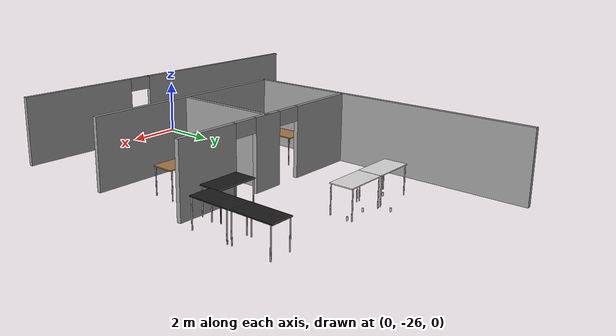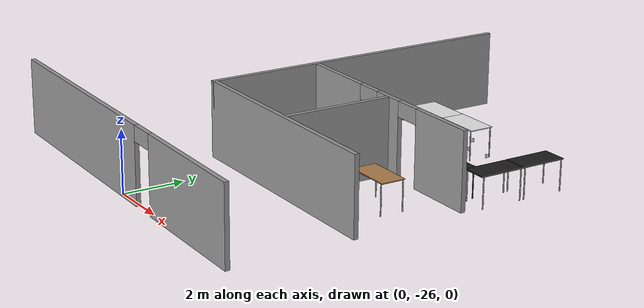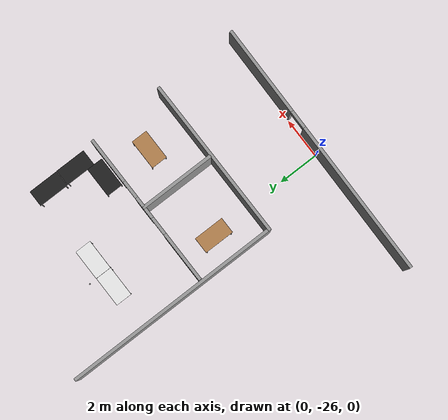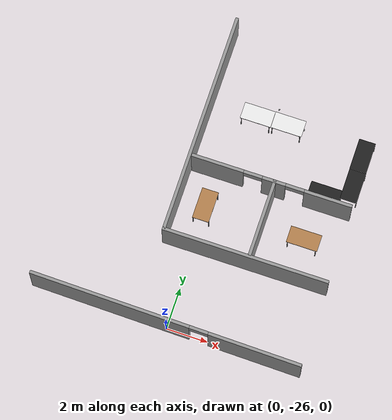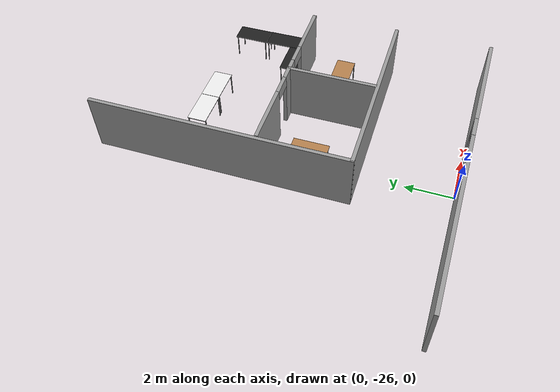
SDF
<sdf version="1.7">
 <model name="ageve">
  <link name="Wall_0">
   <pose>-0.012617 -26.05 0 0 0 -0.016364</pose>
   <visual name="Wall_0_Visual_0">
    <pose>-2.69028 0 1.25 0 -0 0</pose>
    <geometry><box><size>7.70052 0.15 2.5</size></box></geometry>
    <material>
     <script><uri>file://media/materials/scripts/gazebo.material</uri><name>Gazebo/Grey</name></script>
     <ambient>1 1 1 1</ambient>
     <shader type="pixel"/>
    </material>
    <meta><layer>0</layer></meta>
   </visual>
   <visual name="Wall_0_Visual_1">
    <pose>4.30026 0 1.25 0 -0 0</pose>
    <geometry><box><size>4.48056 0.15 2.5</size></box></geometry>
    <material>
     <script><uri>file://media/materials/scripts/gazebo.material</uri><name>Gazebo/Grey</name></script>
     <ambient>1 1 1 1</ambient>
     <shader type="pixel"/>
    </material>
    <meta><layer>0</layer></meta>
   </visual>
   <visual name="Wall_0_Visual_2">
    <pose>1.60998 0 2.25 0 -0 0</pose>
    <geometry><box><size>0.9 0.15 0.5</size></box></geometry>
    <material>
     <script><uri>file://media/materials/scripts/gazebo.material</uri><name>Gazebo/Grey</name></script>
     <ambient>1 1 1 1</ambient>
     <shader type="pixel"/>
    </material>
    <meta><layer>0</layer></meta>
   </visual>
   <collision name="Wall_0_Collision_2">
    <pose>1.60998 0 2.25 0 -0 0</pose>
    <geometry><box><size>0.9 0.15 0.5</size></box></geometry>
    <surface>
     <friction>
      <ode><mu>1</mu><mu2>1</mu2><fdir1>0 0 0</fdir1><slip1>0</slip1><slip2>0</slip2></ode>
      <torsional>
       <coefficient>1</coefficient>
       <patch_radius>0</patch_radius>
       <surface_radius>0</surface_radius>
       <use_patch_radius>1</use_patch_radius>
       <ode><slip>0</slip></ode>
      </torsional>
     </friction>
     <bounce><restitution_coefficient>0</restitution_coefficient><threshold>1e+06</threshold></bounce>
     <contact>
      <collide_without_contact>0</collide_without_contact>
      <collide_without_contact_bitmask>1</collide_without_contact_bitmask>
      <collide_bitmask>1</collide_bitmask>
      <ode>
       <soft_cfm>0</soft_cfm>
       <soft_erp>0.2</soft_erp>
       <kp>1e+13</kp>
       <kd>1</kd>
       <max_vel>0.01</max_vel>
       <min_depth>0</min_depth>
      </ode>
      <bullet>
       <split_impulse>1</split_impulse>
       <split_impulse_penetration_threshold>-0.01</split_impulse_penetration_threshold>
       <soft_cfm>0</soft_cfm>
       <soft_erp>0.2</soft_erp>
       <kp>1e+13</kp>
       <kd>1</kd>
      </bullet>
     </contact>
    </surface>
   </collision>
   <collision name="Wall_0_Collision_0">
    <pose>-2.69028 0 1.25 0 -0 0</pose>
    <geometry><box><size>7.70052 0.15 2.5</size></box></geometry>
    <surface>
     <friction>
      <ode><mu>1</mu><mu2>1</mu2><fdir1>0 0 0</fdir1><slip1>0</slip1><slip2>0</slip2></ode>
      <torsional>
       <coefficient>1</coefficient>
       <patch_radius>0</patch_radius>
       <surface_radius>0</surface_radius>
       <use_patch_radius>1</use_patch_radius>
       <ode><slip>0</slip></ode>
      </torsional>
     </friction>
     <bounce><restitution_coefficient>0</restitution_coefficient><threshold>1e+06</threshold></bounce>
     <contact>
      <collide_without_contact>0</collide_without_contact>
      <collide_without_contact_bitmask>1</collide_without_contact_bitmask>
      <collide_bitmask>1</collide_bitmask>
      <ode>
       <soft_cfm>0</soft_cfm>
       <soft_erp>0.2</soft_erp>
       <kp>1e+13</kp>
       <kd>1</kd>
       <max_vel>0.01</max_vel>
       <min_depth>0</min_depth>
      </ode>
      <bullet>
       <split_impulse>1</split_impulse>
       <split_impulse_penetration_threshold>-0.01</split_impulse_penetration_threshold>
       <soft_cfm>0</soft_cfm>
       <soft_erp>0.2</soft_erp>
       <kp>1e+13</kp>
       <kd>1</kd>
      </bullet>
     </contact>
    </surface>
   </collision>
   <collision name="Wall_0_Collision_1">
    <pose>4.30026 0 1.25 0 -0 0</pose>
    <geometry><box><size>4.48056 0.15 2.5</size></box></geometry>
    <surface>
     <friction>
      <ode><mu>1</mu><mu2>1</mu2><fdir1>0 0 0</fdir1><slip1>0</slip1><slip2>0</slip2></ode>
      <torsional>
       <coefficient>1</coefficient>
       <patch_radius>0</patch_radius>
       <surface_radius>0</surface_radius>
       <use_patch_radius>1</use_patch_radius>
       <ode><slip>0</slip></ode>
      </torsional>
     </friction>
     <bounce><restitution_coefficient>0</restitution_coefficient><threshold>1e+06</threshold></bounce>
     <contact>
      <collide_without_contact>0</collide_without_contact>
      <collide_without_contact_bitmask>1</collide_without_contact_bitmask>
      <collide_bitmask>1</collide_bitmask>
      <ode>
       <soft_cfm>0</soft_cfm>
       <soft_erp>0.2</soft_erp>
       <kp>1e+13</kp>
       <kd>1</kd>
       <max_vel>0.01</max_vel>
       <min_depth>0</min_depth>
      </ode>
      <bullet>
       <split_impulse>1</split_impulse>
       <split_impulse_penetration_threshold>-0.01</split_impulse_penetration_threshold>
       <soft_cfm>0</soft_cfm>
       <soft_erp>0.2</soft_erp>
       <kp>1e+13</kp>
       <kd>1</kd>
      </bullet>
     </contact>
    </surface>
   </collision>
  </link>
  <link name="Wall_11">
   <pose>2.68575 -20.1713 0 0 0 -1.5708</pose>
   <visual name="Wall_11_Visual">
    <pose>0 0 1.25 0 -0 0</pose>
    <geometry><box><size>3.75 0.15 2.5</size></box></geometry>
    <material>
     <script><uri>file://media/materials/scripts/gazebo.material</uri><name>Gazebo/Grey</name></script>
     <ambient>1 1 1 1</ambient>
     <shader type="pixel"/>
    </material>
    <meta><layer>0</layer></meta>
   </visual>
   <collision name="Wall_11_Collision">
    <pose>0 0 1.25 0 -0 0</pose>
    <geometry><box><size>3.75 0.15 2.5</size></box></geometry>
    <surface>
     <friction>
      <ode><mu>1</mu><mu2>1</mu2><fdir1>0 0 0</fdir1><slip1>0</slip1><slip2>0</slip2></ode>
      <torsional>
       <coefficient>1</coefficient>
       <patch_radius>0</patch_radius>
       <surface_radius>0</surface_radius>
       <use_patch_radius>1</use_patch_radius>
       <ode><slip>0</slip></ode>
      </torsional>
     </friction>
     <bounce><restitution_coefficient>0</restitution_coefficient><threshold>1e+06</threshold></bounce>
     <contact>
      <collide_without_contact>0</collide_without_contact>
      <collide_without_contact_bitmask>1</collide_without_contact_bitmask>
      <collide_bitmask>1</collide_bitmask>
      <ode>
       <soft_cfm>0</soft_cfm>
       <soft_erp>0.2</soft_erp>
       <kp>1e+13</kp>
       <kd>1</kd>
       <max_vel>0.01</max_vel>
       <min_depth>0</min_depth>
      </ode>
      <bullet>
       <split_impulse>1</split_impulse>
       <split_impulse_penetration_threshold>-0.01</split_impulse_penetration_threshold>
       <soft_cfm>0</soft_cfm>
       <soft_erp>0.2</soft_erp>
       <kp>1e+13</kp>
       <kd>1</kd>
      </bullet>
     </contact>
    </surface>
   </collision>
  </link>
  <link name="Wall_2">
   <pose>2.54723 -18.366 0 0 -0 0</pose>
   <visual name="Wall_2_Visual_0">
    <pose>-2.61461 0 1.25 0 -0 0</pose>
    <geometry><box><size>2.52079 0.15 2.5</size></box></geometry>
    <material>
     <script><uri>file://media/materials/scripts/gazebo.material</uri><name>Gazebo/Grey</name></script>
     <ambient>1 1 1 1</ambient>
     <shader type="pixel"/>
    </material>
    <meta><layer>0</layer></meta>
   </visual>
   <visual name="Wall_2_Visual_1">
    <pose>0.108959 0 1.25 0 -0 0</pose>
    <geometry><box><size>1.12634 0.15 2.5</size></box></geometry>
    <material>
     <script><uri>file://media/materials/scripts/gazebo.material</uri><name>Gazebo/Grey</name></script>
     <ambient>1 1 1 1</ambient>
     <shader type="pixel"/>
    </material>
    <meta><layer>0</layer></meta>
   </visual>
   <visual name="Wall_2_Visual_3">
    <pose>-0.904212 0 2.25 0 -0 0</pose>
    <geometry><box><size>0.9 0.15 0.5</size></box></geometry>
    <material>
     <script><uri>file://media/materials/scripts/gazebo.material</uri><name>Gazebo/Grey</name></script>
     <ambient>1 1 1 1</ambient>
     <shader type="pixel"/>
    </material>
    <meta><layer>0</layer></meta>
   </visual>
   <visual name="Wall_2_Visual_2">
    <pose>2.72357 0 1.25 0 -0 0</pose>
    <geometry><box><size>2.30287 0.15 2.5</size></box></geometry>
    <material>
     <script><uri>file://media/materials/scripts/gazebo.material</uri><name>Gazebo/Grey</name></script>
     <ambient>1 1 1 1</ambient>
     <shader type="pixel"/>
    </material>
    <meta><layer>0</layer></meta>
   </visual>
   <visual name="Wall_2_Visual_4">
    <pose>1.12213 0 2.25 0 -0 0</pose>
    <geometry><box><size>0.9 0.15 0.5</size></box></geometry>
    <material>
     <script><uri>file://media/materials/scripts/gazebo.material</uri><name>Gazebo/Grey</name></script>
     <ambient>1 1 1 1</ambient>
     <shader type="pixel"/>
    </material>
    <meta><layer>0</layer></meta>
   </visual>
   <collision name="Wall_2_Collision_0">
    <pose>-2.61461 0 1.25 0 -0 0</pose>
    <geometry><box><size>2.52079 0.15 2.5</size></box></geometry>
    <surface>
     <friction>
      <ode><mu>1</mu><mu2>1</mu2><fdir1>0 0 0</fdir1><slip1>0</slip1><slip2>0</slip2></ode>
      <torsional>
       <coefficient>1</coefficient>
       <patch_radius>0</patch_radius>
       <surface_radius>0</surface_radius>
       <use_patch_radius>1</use_patch_radius>
       <ode><slip>0</slip></ode>
      </torsional>
     </friction>
     <bounce><restitution_coefficient>0</restitution_coefficient><threshold>1e+06</threshold></bounce>
     <contact>
      <collide_without_contact>0</collide_without_contact>
      <collide_without_contact_bitmask>1</collide_without_contact_bitmask>
      <collide_bitmask>1</collide_bitmask>
      <ode>
       <soft_cfm>0</soft_cfm>
       <soft_erp>0.2</soft_erp>
       <kp>1e+13</kp>
       <kd>1</kd>
       <max_vel>0.01</max_vel>
       <min_depth>0</min_depth>
      </ode>
      <bullet>
       <split_impulse>1</split_impulse>
       <split_impulse_penetration_threshold>-0.01</split_impulse_penetration_threshold>
       <soft_cfm>0</soft_cfm>
       <soft_erp>0.2</soft_erp>
       <kp>1e+13</kp>
       <kd>1</kd>
      </bullet>
     </contact>
    </surface>
   </collision>
   <collision name="Wall_2_Collision_3">
    <pose>-0.904212 0 2.25 0 -0 0</pose>
    <geometry><box><size>0.9 0.15 0.5</size></box></geometry>
    <surface>
     <friction>
      <ode><mu>1</mu><mu2>1</mu2><fdir1>0 0 0</fdir1><slip1>0</slip1><slip2>0</slip2></ode>
      <torsional>
       <coefficient>1</coefficient>
       <patch_radius>0</patch_radius>
       <surface_radius>0</surface_radius>
       <use_patch_radius>1</use_patch_radius>
       <ode><slip>0</slip></ode>
      </torsional>
     </friction>
     <bounce><restitution_coefficient>0</restitution_coefficient><threshold>1e+06</threshold></bounce>
     <contact>
      <collide_without_contact>0</collide_without_contact>
      <collide_without_contact_bitmask>1</collide_without_contact_bitmask>
      <collide_bitmask>1</collide_bitmask>
      <ode>
       <soft_cfm>0</soft_cfm>
       <soft_erp>0.2</soft_erp>
       <kp>1e+13</kp>
       <kd>1</kd>
       <max_vel>0.01</max_vel>
       <min_depth>0</min_depth>
      </ode>
      <bullet>
       <split_impulse>1</split_impulse>
       <split_impulse_penetration_threshold>-0.01</split_impulse_penetration_threshold>
       <soft_cfm>0</soft_cfm>
       <soft_erp>0.2</soft_erp>
       <kp>1e+13</kp>
       <kd>1</kd>
      </bullet>
     </contact>
    </surface>
   </collision>
   <collision name="Wall_2_Collision_1">
    <pose>0.108959 0 1.25 0 -0 0</pose>
    <geometry><box><size>1.12634 0.15 2.5</size></box></geometry>
    <surface>
     <friction>
      <ode><mu>1</mu><mu2>1</mu2><fdir1>0 0 0</fdir1><slip1>0</slip1><slip2>0</slip2></ode>
      <torsional>
       <coefficient>1</coefficient>
       <patch_radius>0</patch_radius>
       <surface_radius>0</surface_radius>
       <use_patch_radius>1</use_patch_radius>
       <ode><slip>0</slip></ode>
      </torsional>
     </friction>
     <bounce><restitution_coefficient>0</restitution_coefficient><threshold>1e+06</threshold></bounce>
     <contact>
      <collide_without_contact>0</collide_without_contact>
      <collide_without_contact_bitmask>1</collide_without_contact_bitmask>
      <collide_bitmask>1</collide_bitmask>
      <ode>
       <soft_cfm>0</soft_cfm>
       <soft_erp>0.2</soft_erp>
       <kp>1e+13</kp>
       <kd>1</kd>
       <max_vel>0.01</max_vel>
       <min_depth>0</min_depth>
      </ode>
      <bullet>
       <split_impulse>1</split_impulse>
       <split_impulse_penetration_threshold>-0.01</split_impulse_penetration_threshold>
       <soft_cfm>0</soft_cfm>
       <soft_erp>0.2</soft_erp>
       <kp>1e+13</kp>
       <kd>1</kd>
      </bullet>
     </contact>
    </surface>
   </collision>
   <collision name="Wall_2_Collision_2">
    <pose>2.72357 0 1.25 0 -0 0</pose>
    <geometry><box><size>2.30287 0.15 2.5</size></box></geometry>
    <surface>
     <friction>
      <ode><mu>1</mu><mu2>1</mu2><fdir1>0 0 0</fdir1><slip1>0</slip1><slip2>0</slip2></ode>
      <torsional>
       <coefficient>1</coefficient>
       <patch_radius>0</patch_radius>
       <surface_radius>0</surface_radius>
       <use_patch_radius>1</use_patch_radius>
       <ode><slip>0</slip></ode>
      </torsional>
     </friction>
     <bounce><restitution_coefficient>0</restitution_coefficient><threshold>1e+06</threshold></bounce>
     <contact>
      <collide_without_contact>0</collide_without_contact>
      <collide_without_contact_bitmask>1</collide_without_contact_bitmask>
      <collide_bitmask>1</collide_bitmask>
      <ode>
       <soft_cfm>0</soft_cfm>
       <soft_erp>0.2</soft_erp>
       <kp>1e+13</kp>
       <kd>1</kd>
       <max_vel>0.01</max_vel>
       <min_depth>0</min_depth>
      </ode>
      <bullet>
       <split_impulse>1</split_impulse>
       <split_impulse_penetration_threshold>-0.01</split_impulse_penetration_threshold>
       <soft_cfm>0</soft_cfm>
       <soft_erp>0.2</soft_erp>
       <kp>1e+13</kp>
       <kd>1</kd>
      </bullet>
     </contact>
    </surface>
   </collision>
   <collision name="Wall_2_Collision_4">
    <pose>1.12213 0 2.25 0 -0 0</pose>
    <geometry><box><size>0.9 0.15 0.5</size></box></geometry>
    <surface>
     <friction>
      <ode><mu>1</mu><mu2>1</mu2><fdir1>0 0 0</fdir1><slip1>0</slip1><slip2>0</slip2></ode>
      <torsional>
       <coefficient>1</coefficient>
       <patch_radius>0</patch_radius>
       <surface_radius>0</surface_radius>
       <use_patch_radius>1</use_patch_radius>
       <ode><slip>0</slip></ode>
      </torsional>
     </friction>
     <bounce><restitution_coefficient>0</restitution_coefficient><threshold>1e+06</threshold></bounce>
     <contact>
      <collide_without_contact>0</collide_without_contact>
      <collide_without_contact_bitmask>1</collide_without_contact_bitmask>
      <collide_bitmask>1</collide_bitmask>
      <ode>
       <soft_cfm>0</soft_cfm>
       <soft_erp>0.2</soft_erp>
       <kp>1e+13</kp>
       <kd>1</kd>
       <max_vel>0.01</max_vel>
       <min_depth>0</min_depth>
      </ode>
      <bullet>
       <split_impulse>1</split_impulse>
       <split_impulse_penetration_threshold>-0.01</split_impulse_penetration_threshold>
       <soft_cfm>0</soft_cfm>
       <soft_erp>0.2</soft_erp>
       <kp>1e+13</kp>
       <kd>1</kd>
      </bullet>
     </contact>
    </surface>
   </collision>
  </link>
  <link name="Wall_8">
   <pose>-1.42451 -16.7935 0 0 0 -1.5708</pose>
   <visual name="Wall_8_Visual">
    <pose>0 0 1.25 0 -0 0</pose>
    <geometry><box><size>10.75 0.15 2.5</size></box></geometry>
    <material>
     <script><uri>file://media/materials/scripts/gazebo.material</uri><name>Gazebo/Grey</name></script>
     <ambient>1 1 1 1</ambient>
     <shader type="pixel"/>
    </material>
    <meta><layer>0</layer></meta>
   </visual>
   <collision name="Wall_8_Collision">
    <pose>0 0 1.25 0 -0 0</pose>
    <geometry><box><size>10.75 0.15 2.5</size></box></geometry>
    <surface>
     <friction>
      <ode><mu>1</mu><mu2>1</mu2><fdir1>0 0 0</fdir1><slip1>0</slip1><slip2>0</slip2></ode>
      <torsional>
       <coefficient>1</coefficient>
       <patch_radius>0</patch_radius>
       <surface_radius>0</surface_radius>
       <use_patch_radius>1</use_patch_radius>
       <ode><slip>0</slip></ode>
      </torsional>
     </friction>
     <bounce><restitution_coefficient>0</restitution_coefficient><threshold>1e+06</threshold></bounce>
     <contact>
      <collide_without_contact>0</collide_without_contact>
      <collide_without_contact_bitmask>1</collide_without_contact_bitmask>
      <collide_bitmask>1</collide_bitmask>
      <ode>
       <soft_cfm>0</soft_cfm>
       <soft_erp>0.2</soft_erp>
       <kp>1e+13</kp>
       <kd>1</kd>
       <max_vel>0.01</max_vel>
       <min_depth>0</min_depth>
      </ode>
      <bullet>
       <split_impulse>1</split_impulse>
       <split_impulse_penetration_threshold>-0.01</split_impulse_penetration_threshold>
       <soft_cfm>0</soft_cfm>
       <soft_erp>0.2</soft_erp>
       <kp>1e+13</kp>
       <kd>1</kd>
      </bullet>
     </contact>
    </surface>
   </collision>
  </link>
  <link name="Wall_9">
   <pose>2.50049 -22.0935 0 0 -0 0</pose>
   <visual name="Wall_9_Visual">
    <pose>0 0 1.25 0 -0 0</pose>
    <geometry><box><size>8 0.15 2.5</size></box></geometry>
    <material>
     <script><uri>file://media/materials/scripts/gazebo.material</uri><name>Gazebo/Grey</name></script>
     <ambient>1 1 1 1</ambient>
     <shader type="pixel"/>
    </material>
    <meta><layer>0</layer></meta>
   </visual>
   <collision name="Wall_9_Collision">
    <pose>0 0 1.25 0 -0 0</pose>
    <geometry><box><size>8 0.15 2.5</size></box></geometry>
    <surface>
     <friction>
      <ode><mu>1</mu><mu2>1</mu2><fdir1>0 0 0</fdir1><slip1>0</slip1><slip2>0</slip2></ode>
      <torsional>
       <coefficient>1</coefficient>
       <patch_radius>0</patch_radius>
       <surface_radius>0</surface_radius>
       <use_patch_radius>1</use_patch_radius>
       <ode><slip>0</slip></ode>
      </torsional>
     </friction>
     <bounce><restitution_coefficient>0</restitution_coefficient><threshold>1e+06</threshold></bounce>
     <contact>
      <collide_without_contact>0</collide_without_contact>
      <collide_without_contact_bitmask>1</collide_without_contact_bitmask>
      <collide_bitmask>1</collide_bitmask>
      <ode>
       <soft_cfm>0</soft_cfm>
       <soft_erp>0.2</soft_erp>
       <kp>1e+13</kp>
       <kd>1</kd>
       <max_vel>0.01</max_vel>
       <min_depth>0</min_depth>
      </ode>
      <bullet>
       <split_impulse>1</split_impulse>
       <split_impulse_penetration_threshold>-0.01</split_impulse_penetration_threshold>
       <soft_cfm>0</soft_cfm>
       <soft_erp>0.2</soft_erp>
       <kp>1e+13</kp>
       <kd>1</kd>
      </bullet>
     </contact>
    </surface>
   </collision>
  </link>
  <model name="coke_can_0">
   <link name="link">
    <inertial>
     <pose>0 0 0.06 0 -0 0</pose>
     <mass>0.39</mass>
     <inertia>
      <ixx>0.00055575</ixx>
      <ixy>0</ixy>
      <ixz>0</ixz>
      <iyy>0.00055575</iyy>
      <iyz>0</iyz>
      <izz>0.0001755</izz>
     </inertia>
    </inertial>
    <collision name="collision">
     <pose>0.003937 0.004724 -0.18 0 -0 0</pose>
     <geometry><mesh><uri>model://coke_can/meshes/coke_can.dae</uri></mesh></geometry>
     <surface>
      <friction><ode><mu>1</mu><mu2>1</mu2></ode></friction>
      <contact><ode><kp>1e+07</kp><kd>1</kd><min_depth>0.001</min_depth><max_vel>0.1</max_vel></ode></contact>
     </surface>
    </collision>
    <visual name="visual">
     <pose>0.003937 0.004724 -0.18 0 -0 0</pose>
     <geometry><mesh><uri>model://coke_can/meshes/coke_can.dae</uri></mesh></geometry>
    </visual>
   </link>
   <pose>1.65987 -14.3374 0 0 -0 0</pose>
  </model>
  <model name="coke_can_1">
   <link name="link">
    <inertial>
     <pose>0 0 0.06 0 -0 0</pose>
     <mass>0.39</mass>
     <inertia>
      <ixx>0.00055575</ixx>
      <ixy>0</ixy>
      <ixz>0</ixz>
      <iyy>0.00055575</iyy>
      <iyz>0</iyz>
      <izz>0.0001755</izz>
     </inertia>
    </inertial>
    <collision name="collision">
     <pose>0.003937 0.004724 -0.18 0 -0 0</pose>
     <geometry><mesh><uri>model://coke_can/meshes/coke_can.dae</uri></mesh></geometry>
     <surface>
      <friction><ode><mu>1</mu><mu2>1</mu2></ode></friction>
      <contact><ode><kp>1e+07</kp><kd>1</kd><min_depth>0.001</min_depth><max_vel>0.1</max_vel></ode></contact>
     </surface>
    </collision>
    <visual name="visual">
     <pose>0.003937 0.004724 -0.18 0 -0 0</pose>
     <geometry><mesh><uri>model://coke_can/meshes/coke_can.dae</uri></mesh></geometry>
    </visual>
   </link>
   <pose>3.07219 -14.9108 0 0 -0 0</pose>
  </model>
  <model name="coke_can_2">
   <link name="link">
    <inertial>
     <pose>0 0 0.06 0 -0 0</pose>
     <mass>0.39</mass>
     <inertia>
      <ixx>0.00055575</ixx>
      <ixy>0</ixy>
      <ixz>0</ixz>
      <iyy>0.00055575</iyy>
      <iyz>0</iyz>
      <izz>0.0001755</izz>
     </inertia>
    </inertial>
    <collision name="collision">
     <pose>0.003937 0.004724 -0.18 0 -0 0</pose>
     <geometry><mesh><uri>model://coke_can/meshes/coke_can.dae</uri></mesh></geometry>
     <surface>
      <friction><ode><mu>1</mu><mu2>1</mu2></ode></friction>
      <contact><ode><kp>1e+07</kp><kd>1</kd><min_depth>0.001</min_depth><max_vel>0.1</max_vel></ode></contact>
     </surface>
    </collision>
    <visual name="visual">
     <pose>0.003937 0.004724 -0.18 0 -0 0</pose>
     <geometry><mesh><uri>model://coke_can/meshes/coke_can.dae</uri></mesh></geometry>
    </visual>
   </link>
   <pose>2.22945 -14.9439 0 0 -0 0</pose>
  </model>
  <model name="coke_can_3">
   <link name="link">
    <inertial>
     <pose>0 0 0.06 0 -0 0</pose>
     <mass>0.39</mass>
     <inertia>
      <ixx>0.00055575</ixx>
      <ixy>0</ixy>
      <ixz>0</ixz>
      <iyy>0.00055575</iyy>
      <iyz>0</iyz>
      <izz>0.0001755</izz>
     </inertia>
    </inertial>
    <collision name="collision">
     <pose>0.003937 0.004724 -0.18 0 -0 0</pose>
     <geometry><mesh><uri>model://coke_can/meshes/coke_can.dae</uri></mesh></geometry>
     <surface>
      <friction><ode><mu>1</mu><mu2>1</mu2></ode></friction>
      <contact><ode><kp>1e+07</kp><kd>1</kd><min_depth>0.001</min_depth><max_vel>0.1</max_vel></ode></contact>
     </surface>
    </collision>
    <visual name="visual">
     <pose>0.003937 0.004724 -0.18 0 -0 0</pose>
     <geometry><mesh><uri>model://coke_can/meshes/coke_can.dae</uri></mesh></geometry>
    </visual>
   </link>
   <pose>0.713309 -15.2153 0 0 -0 0</pose>
  </model>
  <model name="table_2">
   <static>1</static>
   <link name="link">
    <collision name="surface">
     <pose>0 0 1 0 -0 0</pose>
     <geometry><box><size>1.5 0.8 0.03</size></box></geometry>
     <surface><friction><ode><mu>0.6</mu><mu2>0.6</mu2></ode></friction></surface>
    </collision>
    <visual name="visual1">
     <pose>0 0 1 0 -0 0</pose>
     <geometry><box><size>1.5 0.8 0.03</size></box></geometry>
     <material>
      <script><uri>file://media/materials/scripts/gazebo.material</uri><name>Gazebo/White</name></script>
     </material>
    </visual>
    <collision name="front_left_leg">
     <pose>0.68 0.38 0.5 0 -0 0</pose>
     <geometry><cylinder><radius>0.02</radius><length>1</length></cylinder></geometry>
    </collision>
    <visual name="front_left_leg">
     <pose>0.68 0.38 0.5 0 -0 0</pose>
     <geometry><cylinder><radius>0.02</radius><length>1</length></cylinder></geometry>
     <material>
      <script><uri>file://media/materials/scripts/gazebo.material</uri><name>Gazebo/Grey</name></script>
     </material>
    </visual>
    <collision name="front_right_leg">
     <pose>0.68 -0.38 0.5 0 -0 0</pose>
     <geometry><cylinder><radius>0.02</radius><length>1</length></cylinder></geometry>
    </collision>
    <visual name="front_right_leg">
     <pose>0.68 -0.38 0.5 0 -0 0</pose>
     <geometry><cylinder><radius>0.02</radius><length>1</length></cylinder></geometry>
     <material>
      <script><uri>file://media/materials/scripts/gazebo.material</uri><name>Gazebo/Grey</name></script>
     </material>
    </visual>
    <collision name="back_right_leg">
     <pose>-0.68 -0.38 0.5 0 -0 0</pose>
     <geometry><cylinder><radius>0.02</radius><length>1</length></cylinder></geometry>
    </collision>
    <visual name="back_right_leg">
     <pose>-0.68 -0.38 0.5 0 -0 0</pose>
     <geometry><cylinder><radius>0.02</radius><length>1</length></cylinder></geometry>
     <material>
      <script><uri>file://media/materials/scripts/gazebo.material</uri><name>Gazebo/Grey</name></script>
     </material>
    </visual>
    <collision name="back_left_leg">
     <pose>-0.68 0.38 0.5 0 -0 0</pose>
     <geometry><cylinder><radius>0.02</radius><length>1</length></cylinder></geometry>
    </collision>
    <visual name="back_left_leg">
     <pose>-0.68 0.38 0.5 0 -0 0</pose>
     <geometry><cylinder><radius>0.02</radius><length>1</length></cylinder></geometry>
     <material>
      <script><uri>file://media/materials/scripts/gazebo.material</uri><name>Gazebo/Grey</name></script>
     </material>
    </visual>
   </link>
   <pose>2.35589 -15.1519 0 0 -0 0</pose>
  </model>
  <model name="table_3">
   <static>1</static>
   <link name="link">
    <collision name="surface">
     <pose>0 0 1 0 -0 0</pose>
     <geometry><box><size>1.5 0.8 0.03</size></box></geometry>
     <surface><friction><ode><mu>0.6</mu><mu2>0.6</mu2></ode></friction></surface>
    </collision>
    <visual name="visual1">
     <pose>0 0 1 0 -0 0</pose>
     <geometry><box><size>1.5 0.8 0.03</size></box></geometry>
     <material>
      <script><uri>file://media/materials/scripts/gazebo.material</uri><name>Gazebo/White</name></script>
     </material>
    </visual>
    <collision name="front_left_leg">
     <pose>0.68 0.38 0.5 0 -0 0</pose>
     <geometry><cylinder><radius>0.02</radius><length>1</length></cylinder></geometry>
    </collision>
    <visual name="front_left_leg">
     <pose>0.68 0.38 0.5 0 -0 0</pose>
     <geometry><cylinder><radius>0.02</radius><length>1</length></cylinder></geometry>
     <material>
      <script><uri>file://media/materials/scripts/gazebo.material</uri><name>Gazebo/Grey</name></script>
     </material>
    </visual>
    <collision name="front_right_leg">
     <pose>0.68 -0.38 0.5 0 -0 0</pose>
     <geometry><cylinder><radius>0.02</radius><length>1</length></cylinder></geometry>
    </collision>
    <visual name="front_right_leg">
     <pose>0.68 -0.38 0.5 0 -0 0</pose>
     <geometry><cylinder><radius>0.02</radius><length>1</length></cylinder></geometry>
     <material>
      <script><uri>file://media/materials/scripts/gazebo.material</uri><name>Gazebo/Grey</name></script>
     </material>
    </visual>
    <collision name="back_right_leg">
     <pose>-0.68 -0.38 0.5 0 -0 0</pose>
     <geometry><cylinder><radius>0.02</radius><length>1</length></cylinder></geometry>
    </collision>
    <visual name="back_right_leg">
     <pose>-0.68 -0.38 0.5 0 -0 0</pose>
     <geometry><cylinder><radius>0.02</radius><length>1</length></cylinder></geometry>
     <material>
      <script><uri>file://media/materials/scripts/gazebo.material</uri><name>Gazebo/Grey</name></script>
     </material>
    </visual>
    <collision name="back_left_leg">
     <pose>-0.68 0.38 0.5 0 -0 0</pose>
     <geometry><cylinder><radius>0.02</radius><length>1</length></cylinder></geometry>
    </collision>
    <visual name="back_left_leg">
     <pose>-0.68 0.38 0.5 0 -0 0</pose>
     <geometry><cylinder><radius>0.02</radius><length>1</length></cylinder></geometry>
     <material>
      <script><uri>file://media/materials/scripts/gazebo.material</uri><name>Gazebo/Grey</name></script>
     </material>
    </visual>
   </link>
   <pose>0.849179 -15.1597 0 0 -0 0</pose>
  </model>
  <model name="table_4">
   <static>1</static>
   <link name="link">
    <collision name="surface">
     <pose>0 0 1 0 -0 0</pose>
     <geometry><box><size>1.5 0.8 0.03</size></box></geometry>
     <surface><friction><ode><mu>0.6</mu><mu2>0.6</mu2></ode></friction></surface>
    </collision>
    <visual name="visual1">
     <pose>0 0 1 0 -0 0</pose>
     <geometry><box><size>1.5 0.8 0.03</size></box></geometry>
     <material>
      <script><uri>file://media/materials/scripts/gazebo.material</uri><name>Gazebo/Wood</name></script>
     </material>
    </visual>
    <collision name="front_left_leg">
     <pose>0.68 0.38 0.5 0 -0 0</pose>
     <geometry><cylinder><radius>0.02</radius><length>1</length></cylinder></geometry>
    </collision>
    <visual name="front_left_leg">
     <pose>0.68 0.38 0.5 0 -0 0</pose>
     <geometry><cylinder><radius>0.02</radius><length>1</length></cylinder></geometry>
     <material>
      <script><uri>file://media/materials/scripts/gazebo.material</uri><name>Gazebo/Grey</name></script>
     </material>
    </visual>
    <collision name="front_right_leg">
     <pose>0.68 -0.38 0.5 0 -0 0</pose>
     <geometry><cylinder><radius>0.02</radius><length>1</length></cylinder></geometry>
    </collision>
    <visual name="front_right_leg">
     <pose>0.68 -0.38 0.5 0 -0 0</pose>
     <geometry><cylinder><radius>0.02</radius><length>1</length></cylinder></geometry>
     <material>
      <script><uri>file://media/materials/scripts/gazebo.material</uri><name>Gazebo/Grey</name></script>
     </material>
    </visual>
    <collision name="back_right_leg">
     <pose>-0.68 -0.38 0.5 0 -0 0</pose>
     <geometry><cylinder><radius>0.02</radius><length>1</length></cylinder></geometry>
    </collision>
    <visual name="back_right_leg">
     <pose>-0.68 -0.38 0.5 0 -0 0</pose>
     <geometry><cylinder><radius>0.02</radius><length>1</length></cylinder></geometry>
     <material>
      <script><uri>file://media/materials/scripts/gazebo.material</uri><name>Gazebo/Grey</name></script>
     </material>
    </visual>
    <collision name="back_left_leg">
     <pose>-0.68 0.38 0.5 0 -0 0</pose>
     <geometry><cylinder><radius>0.02</radius><length>1</length></cylinder></geometry>
    </collision>
    <visual name="back_left_leg">
     <pose>-0.68 0.38 0.5 0 -0 0</pose>
     <geometry><cylinder><radius>0.02</radius><length>1</length></cylinder></geometry>
     <material>
      <script><uri>file://media/materials/scripts/gazebo.material</uri><name>Gazebo/Grey</name></script>
     </material>
    </visual>
   </link>
   <pose>4.74405 -20.153 0 0 -0 0</pose>
  </model>
  <model name="table_5">
   <static>1</static>
   <link name="link">
    <collision name="surface">
     <pose>0 0 1 0 -0 0</pose>
     <geometry><box><size>1.5 0.8 0.03</size></box></geometry>
     <surface><friction><ode><mu>0.6</mu><mu2>0.6</mu2></ode></friction></surface>
    </collision>
    <visual name="visual1">
     <pose>0 0 1 0 -0 0</pose>
     <geometry><box><size>1.5 0.8 0.03</size></box></geometry>
     <material>
      <script><uri>file://media/materials/scripts/gazebo.material</uri><name>Gazebo/Wood</name></script>
     </material>
    </visual>
    <collision name="front_left_leg">
     <pose>0.68 0.38 0.5 0 -0 0</pose>
     <geometry><cylinder><radius>0.02</radius><length>1</length></cylinder></geometry>
    </collision>
    <visual name="front_left_leg">
     <pose>0.68 0.38 0.5 0 -0 0</pose>
     <geometry><cylinder><radius>0.02</radius><length>1</length></cylinder></geometry>
     <material>
      <script><uri>file://media/materials/scripts/gazebo.material</uri><name>Gazebo/Grey</name></script>
     </material>
    </visual>
    <collision name="front_right_leg">
     <pose>0.68 -0.38 0.5 0 -0 0</pose>
     <geometry><cylinder><radius>0.02</radius><length>1</length></cylinder></geometry>
    </collision>
    <visual name="front_right_leg">
     <pose>0.68 -0.38 0.5 0 -0 0</pose>
     <geometry><cylinder><radius>0.02</radius><length>1</length></cylinder></geometry>
     <material>
      <script><uri>file://media/materials/scripts/gazebo.material</uri><name>Gazebo/Grey</name></script>
     </material>
    </visual>
    <collision name="back_right_leg">
     <pose>-0.68 -0.38 0.5 0 -0 0</pose>
     <geometry><cylinder><radius>0.02</radius><length>1</length></cylinder></geometry>
    </collision>
    <visual name="back_right_leg">
     <pose>-0.68 -0.38 0.5 0 -0 0</pose>
     <geometry><cylinder><radius>0.02</radius><length>1</length></cylinder></geometry>
     <material>
      <script><uri>file://media/materials/scripts/gazebo.material</uri><name>Gazebo/Grey</name></script>
     </material>
    </visual>
    <collision name="back_left_leg">
     <pose>-0.68 0.38 0.5 0 -0 0</pose>
     <geometry><cylinder><radius>0.02</radius><length>1</length></cylinder></geometry>
    </collision>
    <visual name="back_left_leg">
     <pose>-0.68 0.38 0.5 0 -0 0</pose>
     <geometry><cylinder><radius>0.02</radius><length>1</length></cylinder></geometry>
     <material>
      <script><uri>file://media/materials/scripts/gazebo.material</uri><name>Gazebo/Grey</name></script>
     </material>
    </visual>
   </link>
   <pose>-0.08807 -20.0746 0 0 -0 1.57079</pose>
  </model>
  <model name="table_5_clone_0">
   <static>1</static>
   <link name="link">
    <collision name="surface">
     <pose>0 0 1 0 -0 0</pose>
     <geometry><box><size>1.5 0.8 0.03</size></box></geometry>
     <surface><friction><ode><mu>0.6</mu><mu2>0.6</mu2></ode></friction></surface>
    </collision>
    <visual name="visual1">
     <pose>0 0 1 0 -0 0</pose>
     <geometry><box><size>1.5 0.8 0.03</size></box></geometry>
     <material>
      <script><uri>file://media/materials/scripts/gazebo.material</uri><name>Gazebo/FlatBlack</name></script>
     </material>
    </visual>
    <collision name="front_left_leg">
     <pose>0.68 0.38 0.5 0 -0 0</pose>
     <geometry><cylinder><radius>0.02</radius><length>1</length></cylinder></geometry>
    </collision>
    <visual name="front_left_leg">
     <pose>0.68 0.38 0.5 0 -0 0</pose>
     <geometry><cylinder><radius>0.02</radius><length>1</length></cylinder></geometry>
     <material>
      <script><uri>file://media/materials/scripts/gazebo.material</uri><name>Gazebo/Grey</name></script>
     </material>
    </visual>
    <collision name="front_right_leg">
     <pose>0.68 -0.38 0.5 0 -0 0</pose>
     <geometry><cylinder><radius>0.02</radius><length>1</length></cylinder></geometry>
    </collision>
    <visual name="front_right_leg">
     <pose>0.68 -0.38 0.5 0 -0 0</pose>
     <geometry><cylinder><radius>0.02</radius><length>1</length></cylinder></geometry>
     <material>
      <script><uri>file://media/materials/scripts/gazebo.material</uri><name>Gazebo/Grey</name></script>
     </material>
    </visual>
    <collision name="back_right_leg">
     <pose>-0.68 -0.38 0.5 0 -0 0</pose>
     <geometry><cylinder><radius>0.02</radius><length>1</length></cylinder></geometry>
    </collision>
    <visual name="back_right_leg">
     <pose>-0.68 -0.38 0.5 0 -0 0</pose>
     <geometry><cylinder><radius>0.02</radius><length>1</length></cylinder></geometry>
     <material>
      <script><uri>file://media/materials/scripts/gazebo.material</uri><name>Gazebo/Grey</name></script>
     </material>
    </visual>
    <collision name="back_left_leg">
     <pose>-0.68 0.38 0.5 0 -0 0</pose>
     <geometry><cylinder><radius>0.02</radius><length>1</length></cylinder></geometry>
    </collision>
    <visual name="back_left_leg">
     <pose>-0.68 0.38 0.5 0 -0 0</pose>
     <geometry><cylinder><radius>0.02</radius><length>1</length></cylinder></geometry>
     <material>
      <script><uri>file://media/materials/scripts/gazebo.material</uri><name>Gazebo/Grey</name></script>
     </material>
    </visual>
   </link>
   <pose>6.11023 -15.5185 0 0 -0 1.57079</pose>
  </model>
  <model name="table_5_clone_1">
   <static>1</static>
   <link name="link">
    <collision name="surface">
     <pose>0 0 1 0 -0 0</pose>
     <geometry><box><size>1.5 0.8 0.03</size></box></geometry>
     <surface><friction><ode><mu>0.6</mu><mu2>0.6</mu2></ode></friction></surface>
    </collision>
    <visual name="visual1">
     <pose>0 0 1 0 -0 0</pose>
     <geometry><box><size>1.5 0.8 0.03</size></box></geometry>
     <material>
      <script><uri>file://media/materials/scripts/gazebo.material</uri><name>Gazebo/FlatBlack</name></script>
     </material>
    </visual>
    <collision name="front_left_leg">
     <pose>0.68 0.38 0.5 0 -0 0</pose>
     <geometry><cylinder><radius>0.02</radius><length>1</length></cylinder></geometry>
    </collision>
    <visual name="front_left_leg">
     <pose>0.68 0.38 0.5 0 -0 0</pose>
     <geometry><cylinder><radius>0.02</radius><length>1</length></cylinder></geometry>
     <material>
      <script><uri>file://media/materials/scripts/gazebo.material</uri><name>Gazebo/Grey</name></script>
     </material>
    </visual>
    <collision name="front_right_leg">
     <pose>0.68 -0.38 0.5 0 -0 0</pose>
     <geometry><cylinder><radius>0.02</radius><length>1</length></cylinder></geometry>
    </collision>
    <visual name="front_right_leg">
     <pose>0.68 -0.38 0.5 0 -0 0</pose>
     <geometry><cylinder><radius>0.02</radius><length>1</length></cylinder></geometry>
     <material>
      <script><uri>file://media/materials/scripts/gazebo.material</uri><name>Gazebo/Grey</name></script>
     </material>
    </visual>
    <collision name="back_right_leg">
     <pose>-0.68 -0.38 0.5 0 -0 0</pose>
     <geometry><cylinder><radius>0.02</radius><length>1</length></cylinder></geometry>
    </collision>
    <visual name="back_right_leg">
     <pose>-0.68 -0.38 0.5 0 -0 0</pose>
     <geometry><cylinder><radius>0.02</radius><length>1</length></cylinder></geometry>
     <material>
      <script><uri>file://media/materials/scripts/gazebo.material</uri><name>Gazebo/Grey</name></script>
     </material>
    </visual>
    <collision name="back_left_leg">
     <pose>-0.68 0.38 0.5 0 -0 0</pose>
     <geometry><cylinder><radius>0.02</radius><length>1</length></cylinder></geometry>
    </collision>
    <visual name="back_left_leg">
     <pose>-0.68 0.38 0.5 0 -0 0</pose>
     <geometry><cylinder><radius>0.02</radius><length>1</length></cylinder></geometry>
     <material>
      <script><uri>file://media/materials/scripts/gazebo.material</uri><name>Gazebo/Grey</name></script>
     </material>
    </visual>
   </link>
   <pose>6.12164 -17.0349 0 0 -0 1.57079</pose>
  </model>
  <model name="table_clone">
   <static>1</static>
   <link name="link">
    <collision name="surface">
     <pose>0 0 1 0 -0 0</pose>
     <geometry><box><size>1.5 0.8 0.03</size></box></geometry>
     <surface><friction><ode><mu>0.6</mu><mu2>0.6</mu2></ode></friction></surface>
    </collision>
    <visual name="visual1">
     <pose>0 0 1 0 -0 0</pose>
     <geometry><box><size>1.5 0.8 0.03</size></box></geometry>
     <material>
      <script><uri>file://media/materials/scripts/gazebo.material</uri><name>Gazebo/FlatBlack</name></script>
     </material>
    </visual>
    <collision name="front_left_leg">
     <pose>0.68 0.38 0.5 0 -0 0</pose>
     <geometry><cylinder><radius>0.02</radius><length>1</length></cylinder></geometry>
    </collision>
    <visual name="front_left_leg">
     <pose>0.68 0.38 0.5 0 -0 0</pose>
     <geometry><cylinder><radius>0.02</radius><length>1</length></cylinder></geometry>
     <material>
      <script><uri>file://media/materials/scripts/gazebo.material</uri><name>Gazebo/FlatBlack</name></script>
     </material>
    </visual>
    <collision name="front_right_leg">
     <pose>0.68 -0.38 0.5 0 -0 0</pose>
     <geometry><cylinder><radius>0.02</radius><length>1</length></cylinder></geometry>
    </collision>
    <visual name="front_right_leg">
     <pose>0.68 -0.38 0.5 0 -0 0</pose>
     <geometry><cylinder><radius>0.02</radius><length>1</length></cylinder></geometry>
     <material>
      <script><uri>file://media/materials/scripts/gazebo.material</uri><name>Gazebo/Grey</name></script>
     </material>
    </visual>
    <collision name="back_right_leg">
     <pose>-0.68 -0.38 0.5 0 -0 0</pose>
     <geometry><cylinder><radius>0.02</radius><length>1</length></cylinder></geometry>
    </collision>
    <visual name="back_right_leg">
     <pose>-0.68 -0.38 0.5 0 -0 0</pose>
     <geometry><cylinder><radius>0.02</radius><length>1</length></cylinder></geometry>
     <material>
      <script><uri>file://media/materials/scripts/gazebo.material</uri><name>Gazebo/Grey</name></script>
     </material>
    </visual>
    <collision name="back_left_leg">
     <pose>-0.68 0.38 0.5 0 -0 0</pose>
     <geometry><cylinder><radius>0.02</radius><length>1</length></cylinder></geometry>
    </collision>
    <visual name="back_left_leg">
     <pose>-0.68 0.38 0.5 0 -0 0</pose>
     <geometry><cylinder><radius>0.02</radius><length>1</length></cylinder></geometry>
     <material>
      <script><uri>file://media/materials/scripts/gazebo.material</uri><name>Gazebo/Grey</name></script>
     </material>
    </visual>
   </link>
   <pose>4.97585 -17.8116 0 0 -0 0</pose>
  </model>
  <static>1</static>
 </model>
</sdf>
